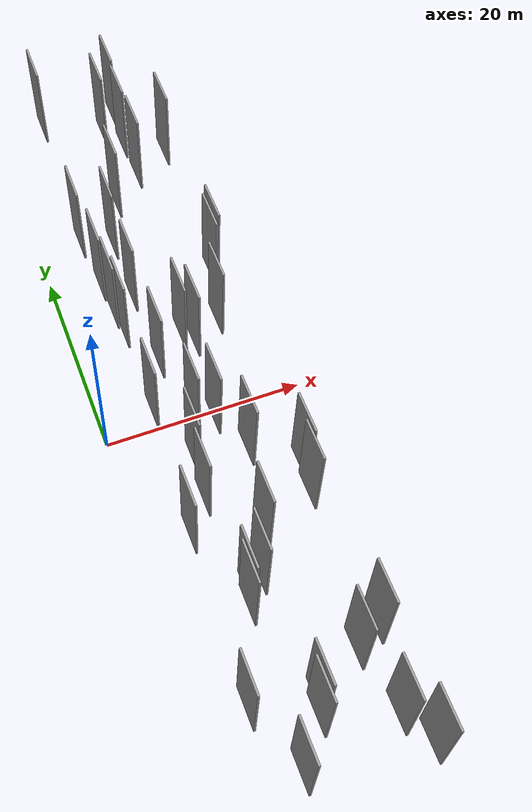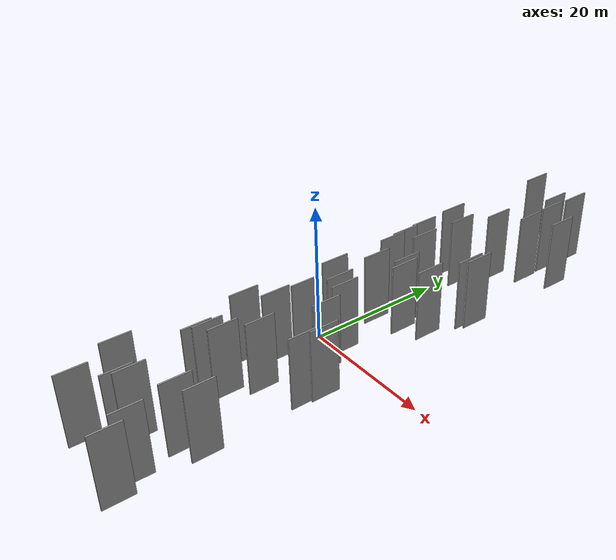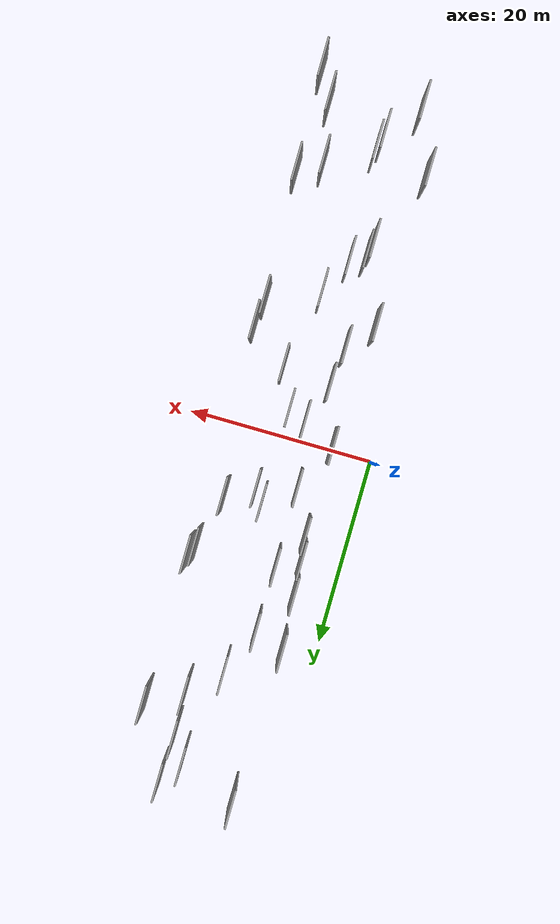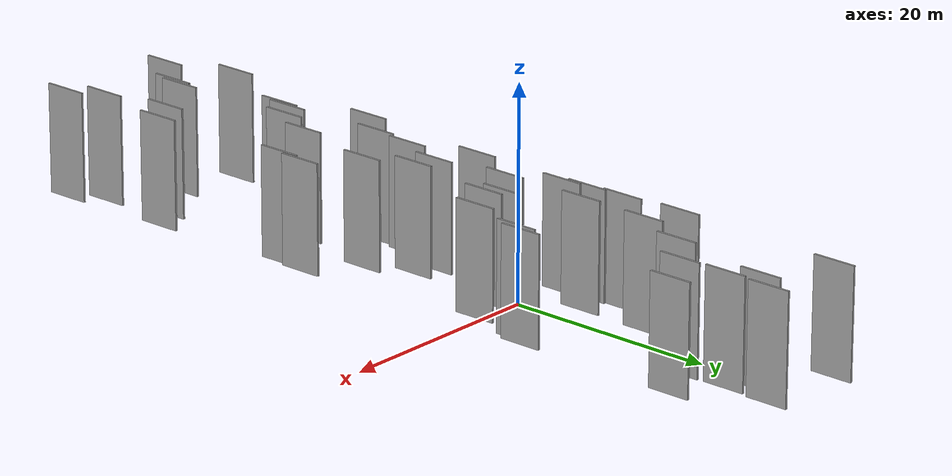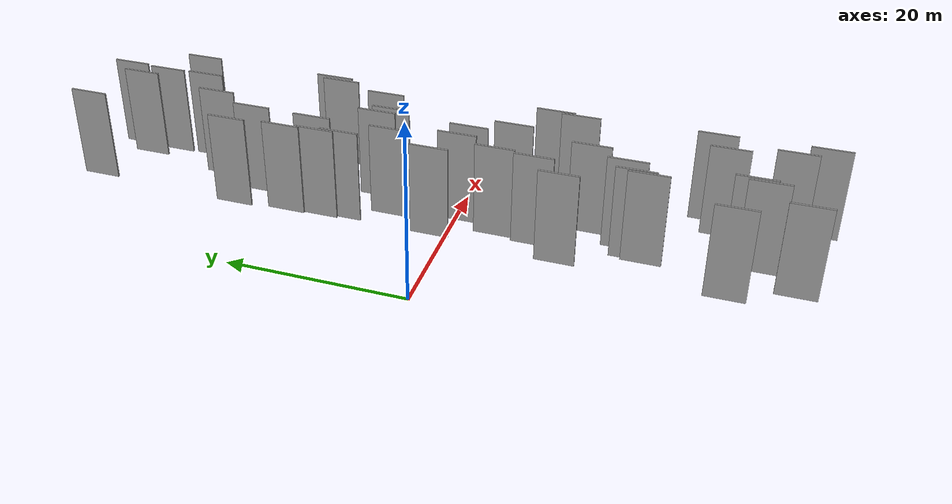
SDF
<sdf version="1.6">
 <world name="default">
  <scene>
   <sky><clouds><speed>12</speed></clouds></sky>
   <ambient>0.4 0.4 0.4 1</ambient>
   <background>0.7 0.7 0.7 1</background>
   <shadows>1</shadows>
  </scene>
  <gravity>0 0 -9.8066</gravity>
  <magnetic_field>6e-06 2.3e-05 -4.2e-05</magnetic_field>
  <physics default="0" name="default_physics" type="ode">
   <ode>
    <solver>
     <type>quick</type>
     <iters>10</iters>
     <sor>1.0</sor>
     <use_dynamic_moi_rescaling>0</use_dynamic_moi_rescaling>
    </solver>
    <constraints>
     <cfm>0</cfm>
     <erp>0.2</erp>
     <contact_max_correcting_vel>100</contact_max_correcting_vel>
     <contact_surface_layer>0.001</contact_surface_layer>
    </constraints>
   </ode>
   <max_step_size>0.004</max_step_size>
   <real_time_factor>1</real_time_factor>
   <real_time_update_rate>250</real_time_update_rate>
  </physics>
  <light name="sun" type="directional">
   <pose>0 0 10 0 0 0</pose>
   <diffuse>0.8 0.8 0.8 1</diffuse>
   <specular>0.2 0.2 0.2 1</specular>
   <attenuation>
    <range>1000</range>
    <constant>0.9</constant>
    <linear>0.01</linear>
    <quadratic>0.001</quadratic>
   </attenuation>
   <direction>-0.5 0.1 -0.9</direction>
  </light>
  <model name="grey_wall_1">
   <static>1</static>
   <pose>10.5256 34.1126 5.0 0.000000 0.000000 1.570796</pose>
   <link name="link">
    <pose>0 0 5.00 0 0 0</pose>
    <collision name="collision"><geometry><box><size>4.00 0.2 10.00</size></box></geometry></collision>
    <visual name="visual">
     <cast_shadows>0</cast_shadows>
     <geometry><box><size>4.00 0.2 10.00</size></box></geometry>
     <material>
      <script>
       <uri>model://grey_wall/materials/scripts</uri>
       <uri>model://grey_wall/materials/textures</uri>
       <name>vrc/grey_wall</name>
      </script>
     </material>
    </visual>
   </link>
  </model>
  <model name="grey_wall_2">
   <static>1</static>
   <pose>13.4877 -28.1812 5.0 0.000000 0.000000 1.570796</pose>
   <link name="link">
    <pose>0 0 5.00 0 0 0</pose>
    <collision name="collision"><geometry><box><size>4.00 0.2 10.00</size></box></geometry></collision>
    <visual name="visual">
     <cast_shadows>0</cast_shadows>
     <geometry><box><size>4.00 0.2 10.00</size></box></geometry>
     <material>
      <script>
       <uri>model://grey_wall/materials/scripts</uri>
       <uri>model://grey_wall/materials/textures</uri>
       <name>vrc/grey_wall</name>
      </script>
     </material>
    </visual>
   </link>
  </model>
  <model name="grey_wall_3">
   <static>1</static>
   <pose>3.0404 -29.8389 5.0 0.000000 0.000000 1.570796</pose>
   <link name="link">
    <pose>0 0 5.00 0 0 0</pose>
    <collision name="collision"><geometry><box><size>4.00 0.2 10.00</size></box></geometry></collision>
    <visual name="visual">
     <cast_shadows>0</cast_shadows>
     <geometry><box><size>4.00 0.2 10.00</size></box></geometry>
     <material>
      <script>
       <uri>model://grey_wall/materials/scripts</uri>
       <uri>model://grey_wall/materials/textures</uri>
       <name>vrc/grey_wall</name>
      </script>
     </material>
    </visual>
   </link>
  </model>
  <model name="grey_wall_4">
   <static>1</static>
   <pose>15.8369 13.7697 5.0 0.000000 0.000000 1.570796</pose>
   <link name="link">
    <pose>0 0 5.00 0 0 0</pose>
    <collision name="collision"><geometry><box><size>4.00 0.2 10.00</size></box></geometry></collision>
    <visual name="visual">
     <cast_shadows>0</cast_shadows>
     <geometry><box><size>4.00 0.2 10.00</size></box></geometry>
     <material>
      <script>
       <uri>model://grey_wall/materials/scripts</uri>
       <uri>model://grey_wall/materials/textures</uri>
       <name>vrc/grey_wall</name>
      </script>
     </material>
    </visual>
   </link>
  </model>
  <model name="grey_wall_5">
   <static>1</static>
   <pose>4.5931 36.8182 5.0 0.000000 0.000000 1.570796</pose>
   <link name="link">
    <pose>0 0 5.00 0 0 0</pose>
    <collision name="collision"><geometry><box><size>4.00 0.2 10.00</size></box></geometry></collision>
    <visual name="visual">
     <cast_shadows>0</cast_shadows>
     <geometry><box><size>4.00 0.2 10.00</size></box></geometry>
     <material>
      <script>
       <uri>model://grey_wall/materials/scripts</uri>
       <uri>model://grey_wall/materials/textures</uri>
       <name>vrc/grey_wall</name>
      </script>
     </material>
    </visual>
   </link>
  </model>
  <model name="grey_wall_6">
   <static>1</static>
   <pose>4.6714 -0.6067 5.0 0.000000 0.000000 1.570796</pose>
   <link name="link">
    <pose>0 0 5.00 0 0 0</pose>
    <collision name="collision"><geometry><box><size>4.00 0.2 10.00</size></box></geometry></collision>
    <visual name="visual">
     <cast_shadows>0</cast_shadows>
     <geometry><box><size>4.00 0.2 10.00</size></box></geometry>
     <material>
      <script>
       <uri>model://grey_wall/materials/scripts</uri>
       <uri>model://grey_wall/materials/textures</uri>
       <name>vrc/grey_wall</name>
      </script>
     </material>
    </visual>
   </link>
  </model>
  <model name="grey_wall_7">
   <static>1</static>
   <pose>8.0584 -2.4000 5.0 0.000000 0.000000 1.570796</pose>
   <link name="link">
    <pose>0 0 5.00 0 0 0</pose>
    <collision name="collision"><geometry><box><size>4.00 0.2 10.00</size></box></geometry></collision>
    <visual name="visual">
     <cast_shadows>0</cast_shadows>
     <geometry><box><size>4.00 0.2 10.00</size></box></geometry>
     <material>
      <script>
       <uri>model://grey_wall/materials/scripts</uri>
       <uri>model://grey_wall/materials/textures</uri>
       <name>vrc/grey_wall</name>
      </script>
     </material>
    </visual>
   </link>
  </model>
  <model name="grey_wall_8">
   <static>1</static>
   <pose>3.8229 -13.5991 5.0 0.000000 0.000000 1.570796</pose>
   <link name="link">
    <pose>0 0 5.00 0 0 0</pose>
    <collision name="collision"><geometry><box><size>4.00 0.2 10.00</size></box></geometry></collision>
    <visual name="visual">
     <cast_shadows>0</cast_shadows>
     <geometry><box><size>4.00 0.2 10.00</size></box></geometry>
     <material>
      <script>
       <uri>model://grey_wall/materials/scripts</uri>
       <uri>model://grey_wall/materials/textures</uri>
       <name>vrc/grey_wall</name>
      </script>
     </material>
    </visual>
   </link>
  </model>
  <model name="grey_wall_9">
   <static>1</static>
   <pose>6.7033 -20.3266 5.0 0.000000 0.000000 1.570796</pose>
   <link name="link">
    <pose>0 0 5.00 0 0 0</pose>
    <collision name="collision"><geometry><box><size>4.00 0.2 10.00</size></box></geometry></collision>
    <visual name="visual">
     <cast_shadows>0</cast_shadows>
     <geometry><box><size>4.00 0.2 10.00</size></box></geometry>
     <material>
      <script>
       <uri>model://grey_wall/materials/scripts</uri>
       <uri>model://grey_wall/materials/textures</uri>
       <name>vrc/grey_wall</name>
      </script>
     </material>
    </visual>
   </link>
  </model>
  <model name="grey_wall_10">
   <static>1</static>
   <pose>16.2675 -37.4046 5.0 0.000000 0.000000 1.570796</pose>
   <link name="link">
    <pose>0 0 5.00 0 0 0</pose>
    <collision name="collision"><geometry><box><size>4.00 0.2 10.00</size></box></geometry></collision>
    <visual name="visual">
     <cast_shadows>0</cast_shadows>
     <geometry><box><size>4.00 0.2 10.00</size></box></geometry>
     <material>
      <script>
       <uri>model://grey_wall/materials/scripts</uri>
       <uri>model://grey_wall/materials/textures</uri>
       <name>vrc/grey_wall</name>
      </script>
     </material>
    </visual>
   </link>
  </model>
  <model name="grey_wall_11">
   <static>1</static>
   <pose>15.6861 -10.5202 5.0 0.000000 0.000000 1.570796</pose>
   <link name="link">
    <pose>0 0 5.00 0 0 0</pose>
    <collision name="collision"><geometry><box><size>4.00 0.2 10.00</size></box></geometry></collision>
    <visual name="visual">
     <cast_shadows>0</cast_shadows>
     <geometry><box><size>4.00 0.2 10.00</size></box></geometry>
     <material>
      <script>
       <uri>model://grey_wall/materials/scripts</uri>
       <uri>model://grey_wall/materials/textures</uri>
       <name>vrc/grey_wall</name>
      </script>
     </material>
    </visual>
   </link>
  </model>
  <model name="grey_wall_12">
   <static>1</static>
   <pose>12.2756 36.2900 5.0 0.000000 0.000000 1.570796</pose>
   <link name="link">
    <pose>0 0 5.00 0 0 0</pose>
    <collision name="collision"><geometry><box><size>4.00 0.2 10.00</size></box></geometry></collision>
    <visual name="visual">
     <cast_shadows>0</cast_shadows>
     <geometry><box><size>4.00 0.2 10.00</size></box></geometry>
     <material>
      <script>
       <uri>model://grey_wall/materials/scripts</uri>
       <uri>model://grey_wall/materials/textures</uri>
       <name>vrc/grey_wall</name>
      </script>
     </material>
    </visual>
   </link>
  </model>
  <model name="grey_wall_13">
   <static>1</static>
   <pose>4.3178 14.8252 5.0 0.000000 0.000000 1.570796</pose>
   <link name="link">
    <pose>0 0 5.00 0 0 0</pose>
    <collision name="collision"><geometry><box><size>4.00 0.2 10.00</size></box></geometry></collision>
    <visual name="visual">
     <cast_shadows>0</cast_shadows>
     <geometry><box><size>4.00 0.2 10.00</size></box></geometry>
     <material>
      <script>
       <uri>model://grey_wall/materials/scripts</uri>
       <uri>model://grey_wall/materials/textures</uri>
       <name>vrc/grey_wall</name>
      </script>
     </material>
    </visual>
   </link>
  </model>
  <model name="grey_wall_14">
   <static>1</static>
   <pose>8.7742 -31.0569 5.0 0.000000 0.000000 1.570796</pose>
   <link name="link">
    <pose>0 0 5.00 0 0 0</pose>
    <collision name="collision"><geometry><box><size>4.00 0.2 10.00</size></box></geometry></collision>
    <visual name="visual">
     <cast_shadows>0</cast_shadows>
     <geometry><box><size>4.00 0.2 10.00</size></box></geometry>
     <material>
      <script>
       <uri>model://grey_wall/materials/scripts</uri>
       <uri>model://grey_wall/materials/textures</uri>
       <name>vrc/grey_wall</name>
      </script>
     </material>
    </visual>
   </link>
  </model>
  <model name="grey_wall_15">
   <static>1</static>
   <pose>9.8857 -3.0758 5.0 0.000000 0.000000 1.570796</pose>
   <link name="link">
    <pose>0 0 5.00 0 0 0</pose>
    <collision name="collision"><geometry><box><size>4.00 0.2 10.00</size></box></geometry></collision>
    <visual name="visual">
     <cast_shadows>0</cast_shadows>
     <geometry><box><size>4.00 0.2 10.00</size></box></geometry>
     <material>
      <script>
       <uri>model://grey_wall/materials/scripts</uri>
       <uri>model://grey_wall/materials/textures</uri>
       <name>vrc/grey_wall</name>
      </script>
     </material>
    </visual>
   </link>
  </model>
  <model name="grey_wall_16">
   <static>1</static>
   <pose>15.2788 12.8191 5.0 0.000000 0.000000 1.570796</pose>
   <link name="link">
    <pose>0 0 5.00 0 0 0</pose>
    <collision name="collision"><geometry><box><size>4.00 0.2 10.00</size></box></geometry></collision>
    <visual name="visual">
     <cast_shadows>0</cast_shadows>
     <geometry><box><size>4.00 0.2 10.00</size></box></geometry>
     <material>
      <script>
       <uri>model://grey_wall/materials/scripts</uri>
       <uri>model://grey_wall/materials/textures</uri>
       <name>vrc/grey_wall</name>
      </script>
     </material>
    </visual>
   </link>
  </model>
  <model name="grey_wall_17">
   <static>1</static>
   <pose>6.8915 12.5735 5.0 0.000000 0.000000 1.570796</pose>
   <link name="link">
    <pose>0 0 5.00 0 0 0</pose>
    <collision name="collision"><geometry><box><size>4.00 0.2 10.00</size></box></geometry></collision>
    <visual name="visual">
     <cast_shadows>0</cast_shadows>
     <geometry><box><size>4.00 0.2 10.00</size></box></geometry>
     <material>
      <script>
       <uri>model://grey_wall/materials/scripts</uri>
       <uri>model://grey_wall/materials/textures</uri>
       <name>vrc/grey_wall</name>
      </script>
     </material>
    </visual>
   </link>
  </model>
  <model name="grey_wall_18">
   <static>1</static>
   <pose>12.0358 31.7779 5.0 0.000000 0.000000 1.570796</pose>
   <link name="link">
    <pose>0 0 5.00 0 0 0</pose>
    <collision name="collision"><geometry><box><size>4.00 0.2 10.00</size></box></geometry></collision>
    <visual name="visual">
     <cast_shadows>0</cast_shadows>
     <geometry><box><size>4.00 0.2 10.00</size></box></geometry>
     <material>
      <script>
       <uri>model://grey_wall/materials/scripts</uri>
       <uri>model://grey_wall/materials/textures</uri>
       <name>vrc/grey_wall</name>
      </script>
     </material>
    </visual>
   </link>
  </model>
  <model name="grey_wall_19">
   <static>1</static>
   <pose>15.3527 -13.1862 5.0 0.000000 0.000000 1.570796</pose>
   <link name="link">
    <pose>0 0 5.00 0 0 0</pose>
    <collision name="collision"><geometry><box><size>4.00 0.2 10.00</size></box></geometry></collision>
    <visual name="visual">
     <cast_shadows>0</cast_shadows>
     <geometry><box><size>4.00 0.2 10.00</size></box></geometry>
     <material>
      <script>
       <uri>model://grey_wall/materials/scripts</uri>
       <uri>model://grey_wall/materials/textures</uri>
       <name>vrc/grey_wall</name>
      </script>
     </material>
    </visual>
   </link>
  </model>
  <model name="grey_wall_20">
   <static>1</static>
   <pose>8.9780 24.3012 5.0 0.000000 0.000000 1.570796</pose>
   <link name="link">
    <pose>0 0 5.00 0 0 0</pose>
    <collision name="collision"><geometry><box><size>4.00 0.2 10.00</size></box></geometry></collision>
    <visual name="visual">
     <cast_shadows>0</cast_shadows>
     <geometry><box><size>4.00 0.2 10.00</size></box></geometry>
     <material>
      <script>
       <uri>model://grey_wall/materials/scripts</uri>
       <uri>model://grey_wall/materials/textures</uri>
       <name>vrc/grey_wall</name>
      </script>
     </material>
    </visual>
   </link>
  </model>
  <model name="grey_wall_21">
   <static>1</static>
   <pose>15.9233 29.3379 5.0 0.000000 0.000000 1.570796</pose>
   <link name="link">
    <pose>0 0 5.00 0 0 0</pose>
    <collision name="collision"><geometry><box><size>4.00 0.2 10.00</size></box></geometry></collision>
    <visual name="visual">
     <cast_shadows>0</cast_shadows>
     <geometry><box><size>4.00 0.2 10.00</size></box></geometry>
     <material>
      <script>
       <uri>model://grey_wall/materials/scripts</uri>
       <uri>model://grey_wall/materials/textures</uri>
       <name>vrc/grey_wall</name>
      </script>
     </material>
    </visual>
   </link>
  </model>
  <model name="grey_wall_22">
   <static>1</static>
   <pose>9.9951 6.7586 5.0 0.000000 0.000000 1.570796</pose>
   <link name="link">
    <pose>0 0 5.00 0 0 0</pose>
    <collision name="collision"><geometry><box><size>4.00 0.2 10.00</size></box></geometry></collision>
    <visual name="visual">
     <cast_shadows>0</cast_shadows>
     <geometry><box><size>4.00 0.2 10.00</size></box></geometry>
     <material>
      <script>
       <uri>model://grey_wall/materials/scripts</uri>
       <uri>model://grey_wall/materials/textures</uri>
       <name>vrc/grey_wall</name>
      </script>
     </material>
    </visual>
   </link>
  </model>
  <model name="grey_wall_23">
   <static>1</static>
   <pose>15.9466 -26.7106 5.0 0.000000 0.000000 1.570796</pose>
   <link name="link">
    <pose>0 0 5.00 0 0 0</pose>
    <collision name="collision"><geometry><box><size>4.00 0.2 10.00</size></box></geometry></collision>
    <visual name="visual">
     <cast_shadows>0</cast_shadows>
     <geometry><box><size>4.00 0.2 10.00</size></box></geometry>
     <material>
      <script>
       <uri>model://grey_wall/materials/scripts</uri>
       <uri>model://grey_wall/materials/textures</uri>
       <name>vrc/grey_wall</name>
      </script>
     </material>
    </visual>
   </link>
  </model>
  <model name="grey_wall_24">
   <static>1</static>
   <pose>8.2410 -19.2474 5.0 0.000000 0.000000 1.570796</pose>
   <link name="link">
    <pose>0 0 5.00 0 0 0</pose>
    <collision name="collision"><geometry><box><size>4.00 0.2 10.00</size></box></geometry></collision>
    <visual name="visual">
     <cast_shadows>0</cast_shadows>
     <geometry><box><size>4.00 0.2 10.00</size></box></geometry>
     <material>
      <script>
       <uri>model://grey_wall/materials/scripts</uri>
       <uri>model://grey_wall/materials/textures</uri>
       <name>vrc/grey_wall</name>
      </script>
     </material>
    </visual>
   </link>
  </model>
  <model name="grey_wall_25">
   <static>1</static>
   <pose>14.6267 -34.3859 5.0 0.000000 0.000000 1.570796</pose>
   <link name="link">
    <pose>0 0 5.00 0 0 0</pose>
    <collision name="collision"><geometry><box><size>4.00 0.2 10.00</size></box></geometry></collision>
    <visual name="visual">
     <cast_shadows>0</cast_shadows>
     <geometry><box><size>4.00 0.2 10.00</size></box></geometry>
     <material>
      <script>
       <uri>model://grey_wall/materials/scripts</uri>
       <uri>model://grey_wall/materials/textures</uri>
       <name>vrc/grey_wall</name>
      </script>
     </material>
    </visual>
   </link>
  </model>
  <model name="grey_wall_26">
   <static>1</static>
   <pose>6.9344 4.4036 5.0 0.000000 0.000000 1.570796</pose>
   <link name="link">
    <pose>0 0 5.00 0 0 0</pose>
    <collision name="collision"><geometry><box><size>4.00 0.2 10.00</size></box></geometry></collision>
    <visual name="visual">
     <cast_shadows>0</cast_shadows>
     <geometry><box><size>4.00 0.2 10.00</size></box></geometry>
     <material>
      <script>
       <uri>model://grey_wall/materials/scripts</uri>
       <uri>model://grey_wall/materials/textures</uri>
       <name>vrc/grey_wall</name>
      </script>
     </material>
    </visual>
   </link>
  </model>
  <model name="grey_wall_27">
   <static>1</static>
   <pose>11.6655 -7.2170 5.0 0.000000 0.000000 1.570796</pose>
   <link name="link">
    <pose>0 0 5.00 0 0 0</pose>
    <collision name="collision"><geometry><box><size>4.00 0.2 10.00</size></box></geometry></collision>
    <visual name="visual">
     <cast_shadows>0</cast_shadows>
     <geometry><box><size>4.00 0.2 10.00</size></box></geometry>
     <material>
      <script>
       <uri>model://grey_wall/materials/scripts</uri>
       <uri>model://grey_wall/materials/textures</uri>
       <name>vrc/grey_wall</name>
      </script>
     </material>
    </visual>
   </link>
  </model>
  <model name="grey_wall_28">
   <static>1</static>
   <pose>6.6180 -6.6603 5.0 0.000000 0.000000 1.570796</pose>
   <link name="link">
    <pose>0 0 5.00 0 0 0</pose>
    <collision name="collision"><geometry><box><size>4.00 0.2 10.00</size></box></geometry></collision>
    <visual name="visual">
     <cast_shadows>0</cast_shadows>
     <geometry><box><size>4.00 0.2 10.00</size></box></geometry>
     <material>
      <script>
       <uri>model://grey_wall/materials/scripts</uri>
       <uri>model://grey_wall/materials/textures</uri>
       <name>vrc/grey_wall</name>
      </script>
     </material>
    </visual>
   </link>
  </model>
  <model name="grey_wall_29">
   <static>1</static>
   <pose>8.3488 -32.2933 5.0 0.000000 0.000000 1.570796</pose>
   <link name="link">
    <pose>0 0 5.00 0 0 0</pose>
    <collision name="collision"><geometry><box><size>4.00 0.2 10.00</size></box></geometry></collision>
    <visual name="visual">
     <cast_shadows>0</cast_shadows>
     <geometry><box><size>4.00 0.2 10.00</size></box></geometry>
     <material>
      <script>
       <uri>model://grey_wall/materials/scripts</uri>
       <uri>model://grey_wall/materials/textures</uri>
       <name>vrc/grey_wall</name>
      </script>
     </material>
    </visual>
   </link>
  </model>
  <model name="grey_wall_30">
   <static>1</static>
   <pose>4.8380 8.7919 5.0 0.000000 0.000000 1.570796</pose>
   <link name="link">
    <pose>0 0 5.00 0 0 0</pose>
    <collision name="collision"><geometry><box><size>4.00 0.2 10.00</size></box></geometry></collision>
    <visual name="visual">
     <cast_shadows>0</cast_shadows>
     <geometry><box><size>4.00 0.2 10.00</size></box></geometry>
     <material>
      <script>
       <uri>model://grey_wall/materials/scripts</uri>
       <uri>model://grey_wall/materials/textures</uri>
       <name>vrc/grey_wall</name>
      </script>
     </material>
    </visual>
   </link>
  </model>
  <model name="grey_wall_31">
   <static>1</static>
   <pose>12.1867 27.2796 5.0 0.000000 0.000000 1.570796</pose>
   <link name="link">
    <pose>0 0 5.00 0 0 0</pose>
    <collision name="collision"><geometry><box><size>4.00 0.2 10.00</size></box></geometry></collision>
    <visual name="visual">
     <cast_shadows>0</cast_shadows>
     <geometry><box><size>4.00 0.2 10.00</size></box></geometry>
     <material>
      <script>
       <uri>model://grey_wall/materials/scripts</uri>
       <uri>model://grey_wall/materials/textures</uri>
       <name>vrc/grey_wall</name>
      </script>
     </material>
    </visual>
   </link>
  </model>
  <model name="grey_wall_32">
   <static>1</static>
   <pose>9.9975 -15.4242 5.0 0.000000 0.000000 1.570796</pose>
   <link name="link">
    <pose>0 0 5.00 0 0 0</pose>
    <collision name="collision"><geometry><box><size>4.00 0.2 10.00</size></box></geometry></collision>
    <visual name="visual">
     <cast_shadows>0</cast_shadows>
     <geometry><box><size>4.00 0.2 10.00</size></box></geometry>
     <material>
      <script>
       <uri>model://grey_wall/materials/scripts</uri>
       <uri>model://grey_wall/materials/textures</uri>
       <name>vrc/grey_wall</name>
      </script>
     </material>
    </visual>
   </link>
  </model>
  <model name="grey_wall_33">
   <static>1</static>
   <pose>5.3767 -36.0988 5.0 0.000000 0.000000 1.570796</pose>
   <link name="link">
    <pose>0 0 5.00 0 0 0</pose>
    <collision name="collision"><geometry><box><size>4.00 0.2 10.00</size></box></geometry></collision>
    <visual name="visual">
     <cast_shadows>0</cast_shadows>
     <geometry><box><size>4.00 0.2 10.00</size></box></geometry>
     <material>
      <script>
       <uri>model://grey_wall/materials/scripts</uri>
       <uri>model://grey_wall/materials/textures</uri>
       <name>vrc/grey_wall</name>
      </script>
     </material>
    </visual>
   </link>
  </model>
  <model name="grey_wall_34">
   <static>1</static>
   <pose>6.1614 -10.6423 5.0 0.000000 0.000000 1.570796</pose>
   <link name="link">
    <pose>0 0 5.00 0 0 0</pose>
    <collision name="collision"><geometry><box><size>4.00 0.2 10.00</size></box></geometry></collision>
    <visual name="visual">
     <cast_shadows>0</cast_shadows>
     <geometry><box><size>4.00 0.2 10.00</size></box></geometry>
     <material>
      <script>
       <uri>model://grey_wall/materials/scripts</uri>
       <uri>model://grey_wall/materials/textures</uri>
       <name>vrc/grey_wall</name>
      </script>
     </material>
    </visual>
   </link>
  </model>
  <model name="grey_wall_35">
   <static>1</static>
   <pose>10.9498 5.5772 5.0 0.000000 0.000000 1.570796</pose>
   <link name="link">
    <pose>0 0 5.00 0 0 0</pose>
    <collision name="collision"><geometry><box><size>4.00 0.2 10.00</size></box></geometry></collision>
    <visual name="visual">
     <cast_shadows>0</cast_shadows>
     <geometry><box><size>4.00 0.2 10.00</size></box></geometry>
     <material>
      <script>
       <uri>model://grey_wall/materials/scripts</uri>
       <uri>model://grey_wall/materials/textures</uri>
       <name>vrc/grey_wall</name>
      </script>
     </material>
    </visual>
   </link>
  </model>
  <model name="grey_wall_36">
   <static>1</static>
   <pose>13.9029 7.2193 5.0 0.000000 0.000000 1.570796</pose>
   <link name="link">
    <pose>0 0 5.00 0 0 0</pose>
    <collision name="collision"><geometry><box><size>4.00 0.2 10.00</size></box></geometry></collision>
    <visual name="visual">
     <cast_shadows>0</cast_shadows>
     <geometry><box><size>4.00 0.2 10.00</size></box></geometry>
     <material>
      <script>
       <uri>model://grey_wall/materials/scripts</uri>
       <uri>model://grey_wall/materials/textures</uri>
       <name>vrc/grey_wall</name>
      </script>
     </material>
    </visual>
   </link>
  </model>
  <model name="grey_wall_37">
   <static>1</static>
   <pose>4.5493 11.2542 5.0 0.000000 0.000000 1.570796</pose>
   <link name="link">
    <pose>0 0 5.00 0 0 0</pose>
    <collision name="collision"><geometry><box><size>4.00 0.2 10.00</size></box></geometry></collision>
    <visual name="visual">
     <cast_shadows>0</cast_shadows>
     <geometry><box><size>4.00 0.2 10.00</size></box></geometry>
     <material>
      <script>
       <uri>model://grey_wall/materials/scripts</uri>
       <uri>model://grey_wall/materials/textures</uri>
       <name>vrc/grey_wall</name>
      </script>
     </material>
    </visual>
   </link>
  </model>
  <model name="grey_wall_38">
   <static>1</static>
   <pose>7.0222 19.3150 5.0 0.000000 0.000000 1.570796</pose>
   <link name="link">
    <pose>0 0 5.00 0 0 0</pose>
    <collision name="collision"><geometry><box><size>4.00 0.2 10.00</size></box></geometry></collision>
    <visual name="visual">
     <cast_shadows>0</cast_shadows>
     <geometry><box><size>4.00 0.2 10.00</size></box></geometry>
     <material>
      <script>
       <uri>model://grey_wall/materials/scripts</uri>
       <uri>model://grey_wall/materials/textures</uri>
       <name>vrc/grey_wall</name>
      </script>
     </material>
    </visual>
   </link>
  </model>
  <model name="grey_wall_39">
   <static>1</static>
   <pose>3.9378 20.5733 5.0 0.000000 0.000000 1.570796</pose>
   <link name="link">
    <pose>0 0 5.00 0 0 0</pose>
    <collision name="collision"><geometry><box><size>4.00 0.2 10.00</size></box></geometry></collision>
    <visual name="visual">
     <cast_shadows>0</cast_shadows>
     <geometry><box><size>4.00 0.2 10.00</size></box></geometry>
     <material>
      <script>
       <uri>model://grey_wall/materials/scripts</uri>
       <uri>model://grey_wall/materials/textures</uri>
       <name>vrc/grey_wall</name>
      </script>
     </material>
    </visual>
   </link>
  </model>
  <model name="grey_wall_40">
   <static>1</static>
   <pose>6.3700 -21.5272 5.0 0.000000 0.000000 1.570796</pose>
   <link name="link">
    <pose>0 0 5.00 0 0 0</pose>
    <collision name="collision"><geometry><box><size>4.00 0.2 10.00</size></box></geometry></collision>
    <visual name="visual">
     <cast_shadows>0</cast_shadows>
     <geometry><box><size>4.00 0.2 10.00</size></box></geometry>
     <material>
      <script>
       <uri>model://grey_wall/materials/scripts</uri>
       <uri>model://grey_wall/materials/textures</uri>
       <name>vrc/grey_wall</name>
      </script>
     </material>
    </visual>
   </link>
  </model>
 </world>
</sdf>
